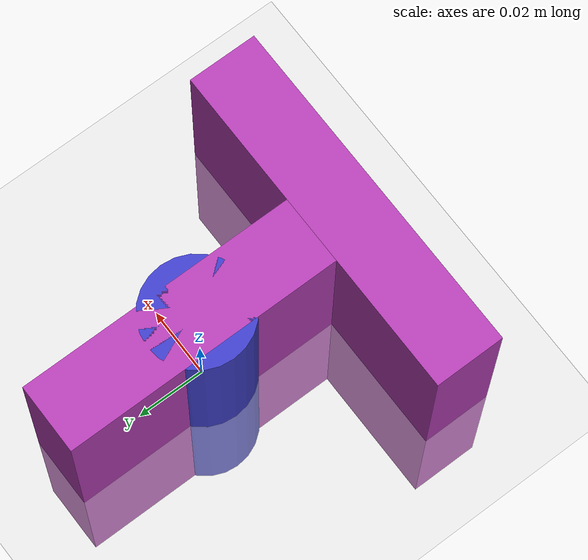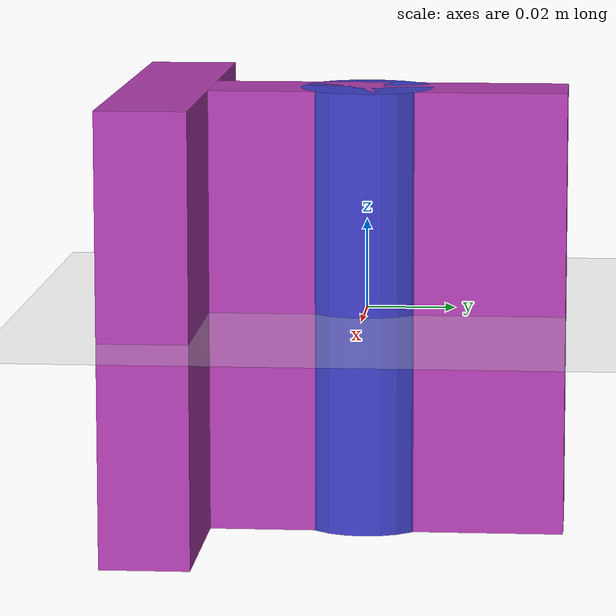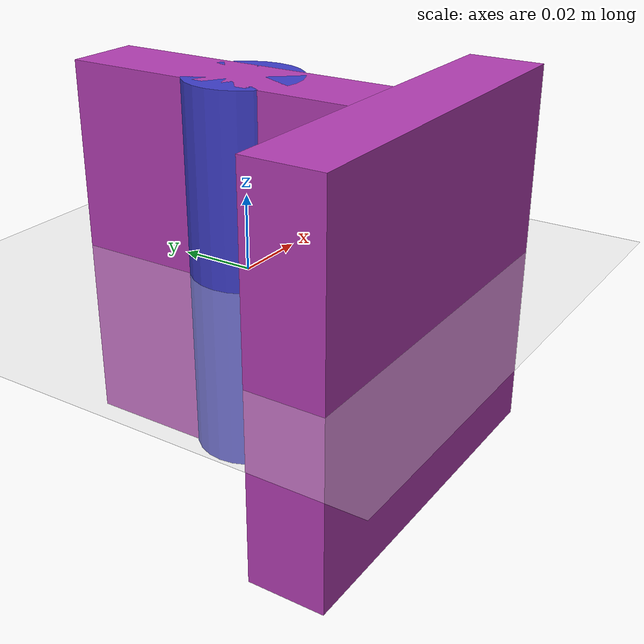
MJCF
<mujoco model="pusht">
  <option gravity="0 0 0" timestep="0.002">
    <flag contact="enable"/>
  </option>

  <visual>
    <global offwidth="256" offheight="256"/>
  </visual>

  <default>
    <geom condim="3" contype="1" conaffinity="1"/>
  </default>

  <asset>
    <material name="table_mat" rgba="0.85 0.85 0.85 1"/>
    <material name="tblock_mat" rgba="0.7 0.24 0.7 1"/>
    <material name="pusher_mat" rgba="0.24 0.24 0.78 1"/>
  </asset>

  <contact>
    <pair geom1="pusher_geom" geom2="t_bar"/>
    <pair geom1="pusher_geom" geom2="t_stem"/>
  </contact>

  <worldbody>
    <geom name="table" type="plane" size="0.5 0.5 0.001" material="table_mat"
          contype="0" conaffinity="0"/>

    <body name="tblock" pos="0 0 0">
      <joint name="tblock_x" type="slide" axis="1 0 0" damping="5" limited="true" range="-0.15 0.15"/>
      <joint name="tblock_y" type="slide" axis="0 1 0" damping="5" limited="true" range="-0.15 0.15"/>
      <joint name="tblock_rot" type="hinge" axis="0 0 1" damping="1"/>
      <!-- Bar: 10cm wide x 2cm tall -->
      <geom name="t_bar" type="box" size="0.05 0.01 0.05"
            pos="0 -0.045 0" material="tblock_mat" mass="0.15"/>
      <!-- Stem: 2cm wide x 8cm tall -->
      <geom name="t_stem" type="box" size="0.01 0.04 0.05"
            pos="0 0.005 0" material="tblock_mat" mass="0.15"/>
    </body>

    <body name="pusher" pos="0 0 0">
      <joint name="pusher_x" type="slide" axis="1 0 0" limited="true" range="-0.18 0.18"/>
      <joint name="pusher_y" type="slide" axis="0 1 0" limited="true" range="-0.18 0.18"/>
      <geom name="pusher_geom" type="cylinder" size="0.015 0.05"
            material="pusher_mat" mass="0.5"/>
    </body>

    <camera name="top_down" pos="0 0 0.5" quat="1 0 0 0" fovy="45"/>
  </worldbody>

  <actuator>
    <velocity name="pusher_vx" joint="pusher_x" kv="50"/>
    <velocity name="pusher_vy" joint="pusher_y" kv="50"/>
  </actuator>
</mujoco>
